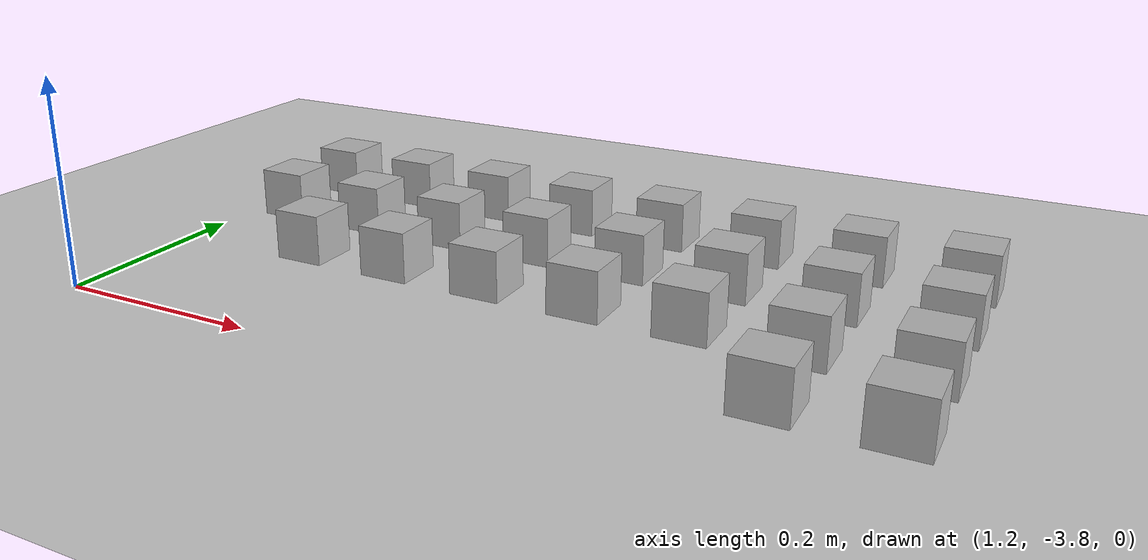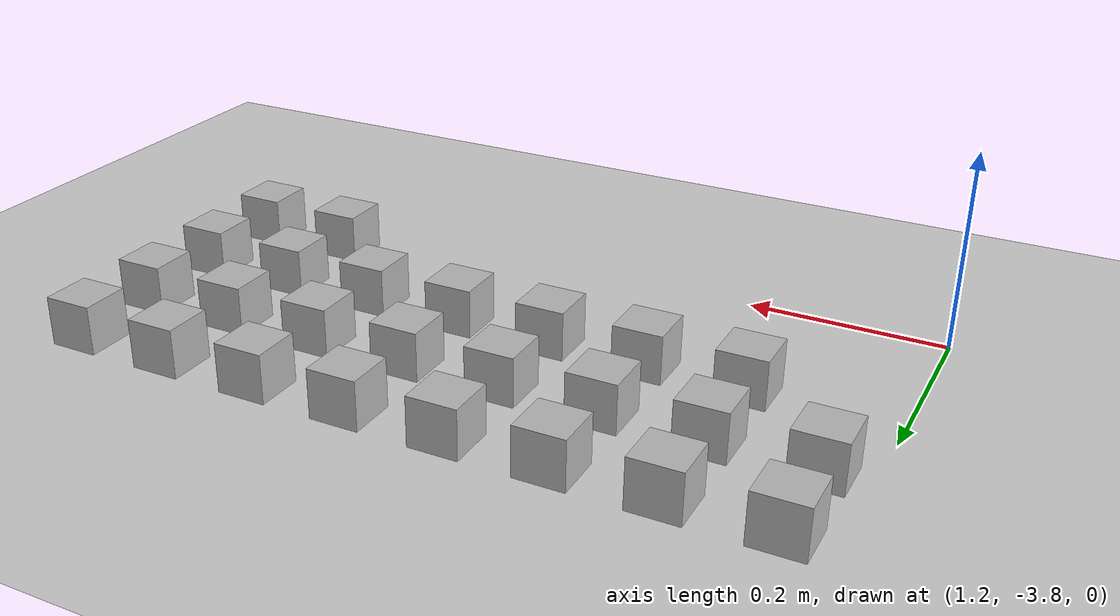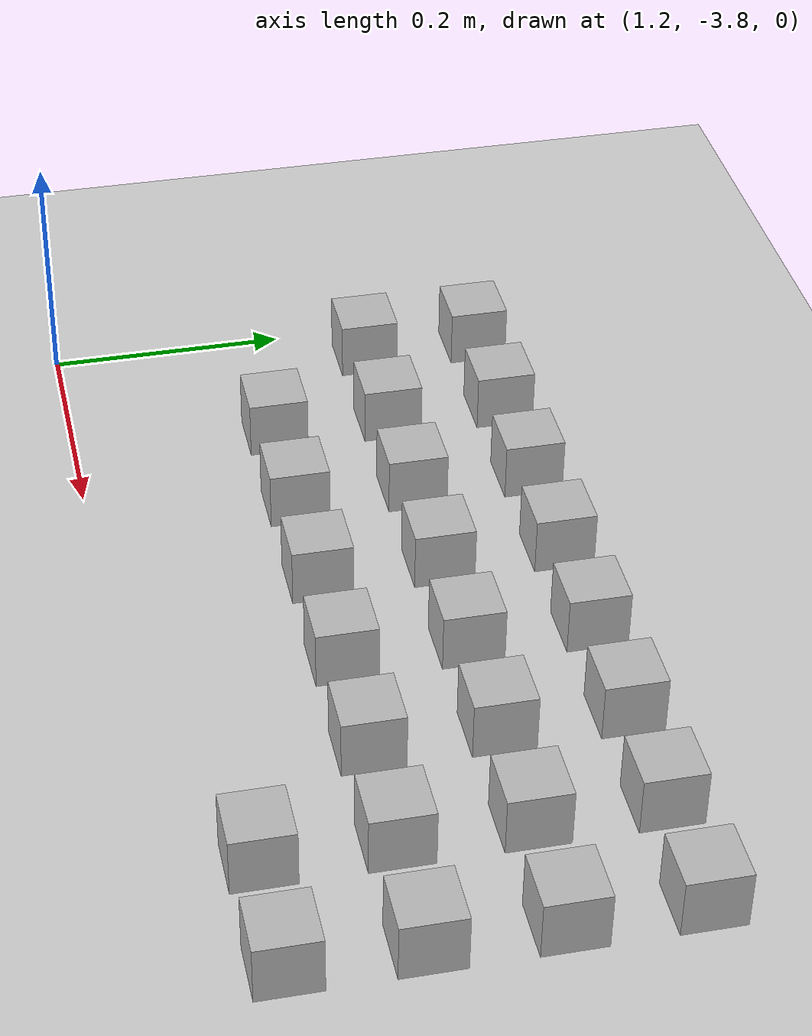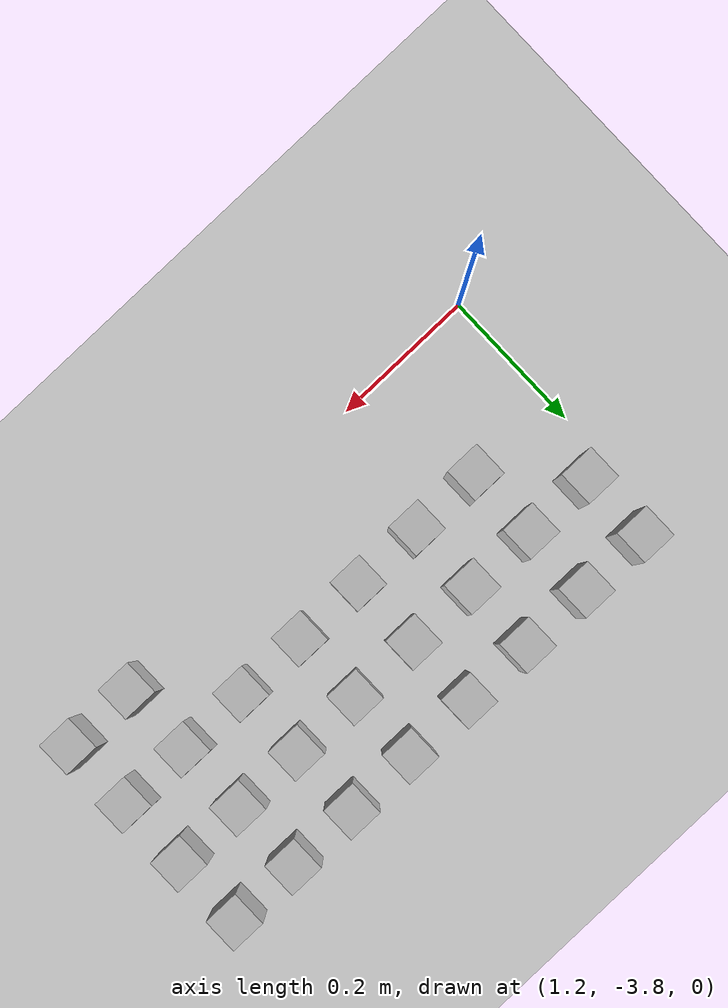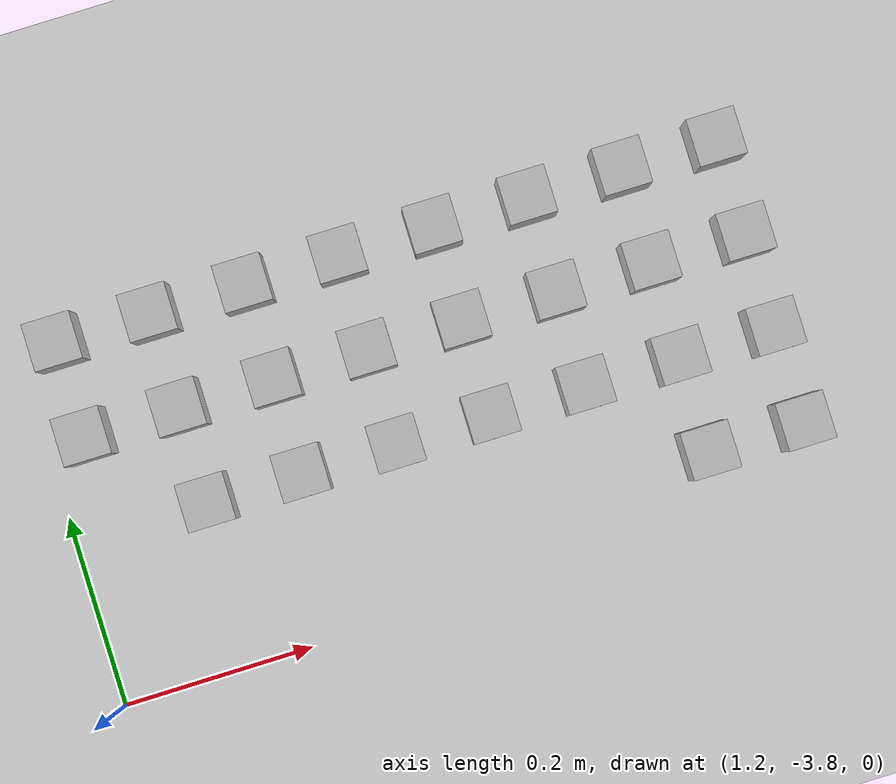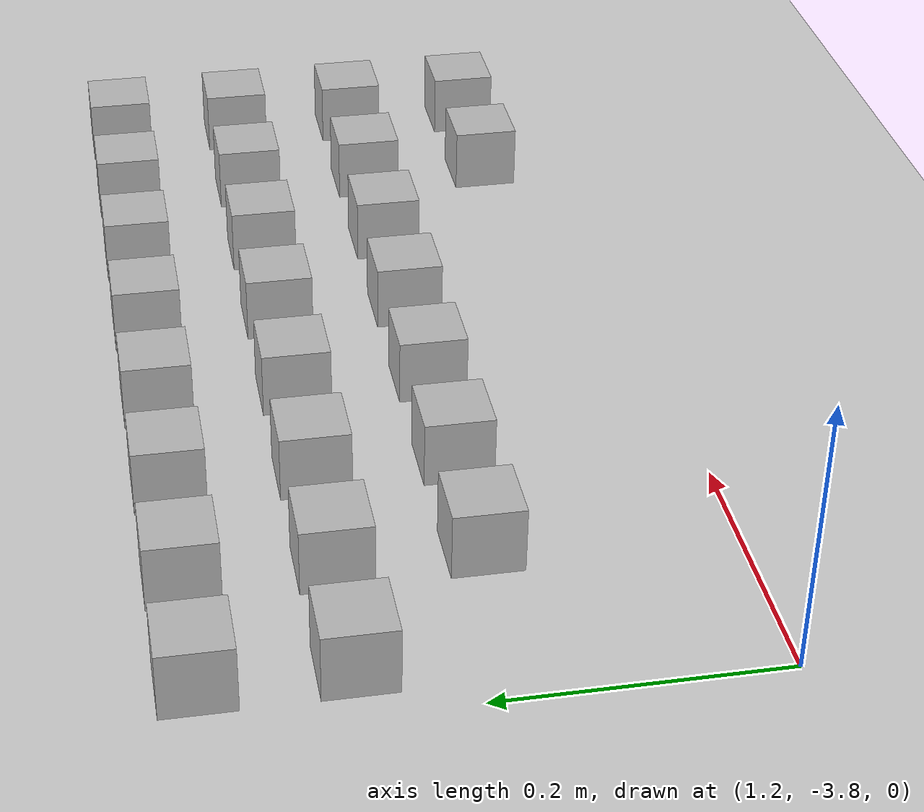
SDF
<sdf version="1.4">
 <world name="default">
  <model name="ground_plane">
   <static>1</static>
   <link name="link">
    <collision name="collision">
     <geometry><plane><normal>0 0 1</normal><size>100 100</size></plane></geometry>
     <surface><friction><ode><mu>100</mu><mu2>50</mu2></ode></friction></surface>
    </collision>
    <visual name="visual">
     <cast_shadows>0</cast_shadows>
     <geometry><plane><normal>0 0 1</normal><size>100 100</size></plane></geometry>
     <material>
      <script><uri>file://media/materials/scripts/gazebo.material</uri><name>Gazebo/Grey</name></script>
     </material>
    </visual>
    <velocity_decay><linear>0</linear><angular>0</angular></velocity_decay>
   </link>
  </model>
  <model name="at230">
   <static>0</static>
   <link name="link">
    <inertial>
     <mass>0.01</mass>
     <inertia><ixx>4e-05</ixx><ixy>0</ixy><ixz>0</ixz><iyy>4e-05</iyy><iyz>0</iyz><izz>4e-05</izz></inertia>
    </inertial>
    <visual name="visual">
     <transparency>0.1</transparency>
     <geometry><box><size>0.05 0.05 0.05</size></box></geometry>
     <material>
      <script>
       <uri>model://at0/materials/scripts</uri>
       <uri>model://at0/materials/textures</uri>
       <name>at0/Diffuse</name>
      </script>
     </material>
    </visual>
    <collision name="collision">
     <geometry><box><size>0.05 0.05 0.05</size></box></geometry>
     <surface><friction><ode><mu>0.8</mu><mu2>0.7</mu2></ode></friction></surface>
    </collision>
    <velocity_decay><linear>0</linear><angular>0</angular></velocity_decay>
   </link>
   <pose>1.84324 -3.72605 0.024993 -2.9e-05 -2.9e-05 1.03398e-25</pose>
  </model>
  <model name="at231">
   <static>0</static>
   <link name="link">
    <inertial>
     <mass>0.01</mass>
     <inertia><ixx>4e-05</ixx><ixy>0</ixy><ixz>0</ixz><iyy>4e-05</iyy><iyz>0</iyz><izz>4e-05</izz></inertia>
    </inertial>
    <visual name="visual">
     <transparency>0.1</transparency>
     <geometry><box><size>0.05 0.05 0.05</size></box></geometry>
     <material>
      <script>
       <uri>model://at0/materials/scripts</uri>
       <uri>model://at0/materials/textures</uri>
       <name>at0/Diffuse</name>
      </script>
     </material>
    </visual>
    <collision name="collision">
     <geometry><box><size>0.05 0.05 0.05</size></box></geometry>
     <surface><friction><ode><mu>0.8</mu><mu2>0.7</mu2></ode></friction></surface>
    </collision>
    <velocity_decay><linear>0</linear><angular>0</angular></velocity_decay>
   </link>
   <pose>1.94324 -3.72605 0.024993 -2.9e-05 -2.9e-05 1.03398e-25</pose>
  </model>
  <model name="at233">
   <static>0</static>
   <link name="link">
    <inertial>
     <mass>0.01</mass>
     <inertia><ixx>4e-05</ixx><ixy>0</ixy><ixz>0</ixz><iyy>4e-05</iyy><iyz>0</iyz><izz>4e-05</izz></inertia>
    </inertial>
    <visual name="visual">
     <transparency>0.1</transparency>
     <geometry><box><size>0.05 0.05 0.05</size></box></geometry>
     <material>
      <script>
       <uri>model://at0/materials/scripts</uri>
       <uri>model://at0/materials/textures</uri>
       <name>at0/Diffuse</name>
      </script>
     </material>
    </visual>
    <collision name="collision">
     <geometry><box><size>0.05 0.05 0.05</size></box></geometry>
     <surface><friction><ode><mu>0.8</mu><mu2>0.7</mu2></ode></friction></surface>
    </collision>
    <velocity_decay><linear>0</linear><angular>0</angular></velocity_decay>
   </link>
   <pose>1.34324 -3.62605 0.024993 -2.9e-05 -2.9e-05 1.03398e-25</pose>
  </model>
  <model name="at234">
   <static>0</static>
   <link name="link">
    <inertial>
     <mass>0.01</mass>
     <inertia><ixx>4e-05</ixx><ixy>0</ixy><ixz>0</ixz><iyy>4e-05</iyy><iyz>0</iyz><izz>4e-05</izz></inertia>
    </inertial>
    <visual name="visual">
     <transparency>0.1</transparency>
     <geometry><box><size>0.05 0.05 0.05</size></box></geometry>
     <material>
      <script>
       <uri>model://at0/materials/scripts</uri>
       <uri>model://at0/materials/textures</uri>
       <name>at0/Diffuse</name>
      </script>
     </material>
    </visual>
    <collision name="collision">
     <geometry><box><size>0.05 0.05 0.05</size></box></geometry>
     <surface><friction><ode><mu>0.8</mu><mu2>0.7</mu2></ode></friction></surface>
    </collision>
    <velocity_decay><linear>0</linear><angular>0</angular></velocity_decay>
   </link>
   <pose>1.44324 -3.62605 0.024997 2.9e-05 2.9e-05 1.03398e-25</pose>
  </model>
  <model name="at235">
   <static>0</static>
   <link name="link">
    <inertial>
     <mass>0.01</mass>
     <inertia><ixx>4e-05</ixx><ixy>0</ixy><ixz>0</ixz><iyy>4e-05</iyy><iyz>0</iyz><izz>4e-05</izz></inertia>
    </inertial>
    <visual name="visual">
     <transparency>0.1</transparency>
     <geometry><box><size>0.05 0.05 0.05</size></box></geometry>
     <material>
      <script>
       <uri>model://at0/materials/scripts</uri>
       <uri>model://at0/materials/textures</uri>
       <name>at0/Diffuse</name>
      </script>
     </material>
    </visual>
    <collision name="collision">
     <geometry><box><size>0.05 0.05 0.05</size></box></geometry>
     <surface><friction><ode><mu>0.8</mu><mu2>0.7</mu2></ode></friction></surface>
    </collision>
    <velocity_decay><linear>0</linear><angular>0</angular></velocity_decay>
   </link>
   <pose>1.54324 -3.62605 0.024997 2.9e-05 2.9e-05 1.03398e-25</pose>
  </model>
  <model name="at236">
   <static>0</static>
   <link name="link">
    <inertial>
     <mass>0.01</mass>
     <inertia><ixx>4e-05</ixx><ixy>0</ixy><ixz>0</ixz><iyy>4e-05</iyy><iyz>0</iyz><izz>4e-05</izz></inertia>
    </inertial>
    <visual name="visual">
     <transparency>0.1</transparency>
     <geometry><box><size>0.05 0.05 0.05</size></box></geometry>
     <material>
      <script>
       <uri>model://at0/materials/scripts</uri>
       <uri>model://at0/materials/textures</uri>
       <name>at0/Diffuse</name>
      </script>
     </material>
    </visual>
    <collision name="collision">
     <geometry><box><size>0.05 0.05 0.05</size></box></geometry>
     <surface><friction><ode><mu>0.8</mu><mu2>0.7</mu2></ode></friction></surface>
    </collision>
    <velocity_decay><linear>0</linear><angular>0</angular></velocity_decay>
   </link>
   <pose>1.64324 -3.62605 0.024997 2.9e-05 2.9e-05 1.03398e-25</pose>
  </model>
  <model name="at237">
   <static>0</static>
   <link name="link">
    <inertial>
     <mass>0.01</mass>
     <inertia><ixx>4e-05</ixx><ixy>0</ixy><ixz>0</ixz><iyy>4e-05</iyy><iyz>0</iyz><izz>4e-05</izz></inertia>
    </inertial>
    <visual name="visual">
     <transparency>0.1</transparency>
     <geometry><box><size>0.05 0.05 0.05</size></box></geometry>
     <material>
      <script>
       <uri>model://at0/materials/scripts</uri>
       <uri>model://at0/materials/textures</uri>
       <name>at0/Diffuse</name>
      </script>
     </material>
    </visual>
    <collision name="collision">
     <geometry><box><size>0.05 0.05 0.05</size></box></geometry>
     <surface><friction><ode><mu>0.8</mu><mu2>0.7</mu2></ode></friction></surface>
    </collision>
    <velocity_decay><linear>0</linear><angular>0</angular></velocity_decay>
   </link>
   <pose>1.74324 -3.62605 0.024997 2.9e-05 2.9e-05 1.03398e-25</pose>
  </model>
  <model name="at238">
   <static>0</static>
   <link name="link">
    <inertial>
     <mass>0.01</mass>
     <inertia><ixx>4e-05</ixx><ixy>0</ixy><ixz>0</ixz><iyy>4e-05</iyy><iyz>0</iyz><izz>4e-05</izz></inertia>
    </inertial>
    <visual name="visual">
     <transparency>0.1</transparency>
     <geometry><box><size>0.05 0.05 0.05</size></box></geometry>
     <material>
      <script>
       <uri>model://at0/materials/scripts</uri>
       <uri>model://at0/materials/textures</uri>
       <name>at0/Diffuse</name>
      </script>
     </material>
    </visual>
    <collision name="collision">
     <geometry><box><size>0.05 0.05 0.05</size></box></geometry>
     <surface><friction><ode><mu>0.8</mu><mu2>0.7</mu2></ode></friction></surface>
    </collision>
    <velocity_decay><linear>0</linear><angular>0</angular></velocity_decay>
   </link>
   <pose>1.84324 -3.62605 0.024997 2.9e-05 2.9e-05 1.03398e-25</pose>
  </model>
  <model name="at239">
   <static>0</static>
   <link name="link">
    <inertial>
     <mass>0.01</mass>
     <inertia><ixx>4e-05</ixx><ixy>0</ixy><ixz>0</ixz><iyy>4e-05</iyy><iyz>0</iyz><izz>4e-05</izz></inertia>
    </inertial>
    <visual name="visual">
     <transparency>0.1</transparency>
     <geometry><box><size>0.05 0.05 0.05</size></box></geometry>
     <material>
      <script>
       <uri>model://at0/materials/scripts</uri>
       <uri>model://at0/materials/textures</uri>
       <name>at0/Diffuse</name>
      </script>
     </material>
    </visual>
    <collision name="collision">
     <geometry><box><size>0.05 0.05 0.05</size></box></geometry>
     <surface><friction><ode><mu>0.8</mu><mu2>0.7</mu2></ode></friction></surface>
    </collision>
    <velocity_decay><linear>0</linear><angular>0</angular></velocity_decay>
   </link>
   <pose>1.94324 -3.62605 0.024997 2.9e-05 2.9e-05 1.03398e-25</pose>
  </model>
  <model name="at240">
   <static>0</static>
   <link name="link">
    <inertial>
     <mass>0.01</mass>
     <inertia><ixx>4e-05</ixx><ixy>0</ixy><ixz>0</ixz><iyy>4e-05</iyy><iyz>0</iyz><izz>4e-05</izz></inertia>
    </inertial>
    <visual name="visual">
     <transparency>0.1</transparency>
     <geometry><box><size>0.05 0.05 0.05</size></box></geometry>
     <material>
      <script>
       <uri>model://at0/materials/scripts</uri>
       <uri>model://at0/materials/textures</uri>
       <name>at0/Diffuse</name>
      </script>
     </material>
    </visual>
    <collision name="collision">
     <geometry><box><size>0.05 0.05 0.05</size></box></geometry>
     <surface><friction><ode><mu>0.8</mu><mu2>0.7</mu2></ode></friction></surface>
    </collision>
    <velocity_decay><linear>0</linear><angular>0</angular></velocity_decay>
   </link>
   <pose>1.24324 -3.52605 0.024993 -2.9e-05 -2.9e-05 1.03398e-25</pose>
  </model>
  <model name="at241">
   <static>0</static>
   <link name="link">
    <inertial>
     <mass>0.01</mass>
     <inertia><ixx>4e-05</ixx><ixy>0</ixy><ixz>0</ixz><iyy>4e-05</iyy><iyz>0</iyz><izz>4e-05</izz></inertia>
    </inertial>
    <visual name="visual">
     <transparency>0.1</transparency>
     <geometry><box><size>0.05 0.05 0.05</size></box></geometry>
     <material>
      <script>
       <uri>model://at0/materials/scripts</uri>
       <uri>model://at0/materials/textures</uri>
       <name>at0/Diffuse</name>
      </script>
     </material>
    </visual>
    <collision name="collision">
     <geometry><box><size>0.05 0.05 0.05</size></box></geometry>
     <surface><friction><ode><mu>0.8</mu><mu2>0.7</mu2></ode></friction></surface>
    </collision>
    <velocity_decay><linear>0</linear><angular>0</angular></velocity_decay>
   </link>
   <pose>1.34324 -3.52605 0.024993 -2.9e-05 -2.9e-05 1.03398e-25</pose>
  </model>
  <model name="at242">
   <static>0</static>
   <link name="link">
    <inertial>
     <mass>0.01</mass>
     <inertia><ixx>4e-05</ixx><ixy>0</ixy><ixz>0</ixz><iyy>4e-05</iyy><iyz>0</iyz><izz>4e-05</izz></inertia>
    </inertial>
    <visual name="visual">
     <transparency>0.1</transparency>
     <geometry><box><size>0.05 0.05 0.05</size></box></geometry>
     <material>
      <script>
       <uri>model://at0/materials/scripts</uri>
       <uri>model://at0/materials/textures</uri>
       <name>at0/Diffuse</name>
      </script>
     </material>
    </visual>
    <collision name="collision">
     <geometry><box><size>0.05 0.05 0.05</size></box></geometry>
     <surface><friction><ode><mu>0.8</mu><mu2>0.7</mu2></ode></friction></surface>
    </collision>
    <velocity_decay><linear>0</linear><angular>0</angular></velocity_decay>
   </link>
   <pose>1.44324 -3.52605 0.024993 -2.9e-05 -2.9e-05 1.03398e-25</pose>
  </model>
  <model name="at243">
   <static>0</static>
   <link name="link">
    <inertial>
     <mass>0.01</mass>
     <inertia><ixx>4e-05</ixx><ixy>0</ixy><ixz>0</ixz><iyy>4e-05</iyy><iyz>0</iyz><izz>4e-05</izz></inertia>
    </inertial>
    <visual name="visual">
     <transparency>0.1</transparency>
     <geometry><box><size>0.05 0.05 0.05</size></box></geometry>
     <material>
      <script>
       <uri>model://at0/materials/scripts</uri>
       <uri>model://at0/materials/textures</uri>
       <name>at0/Diffuse</name>
      </script>
     </material>
    </visual>
    <collision name="collision">
     <geometry><box><size>0.05 0.05 0.05</size></box></geometry>
     <surface><friction><ode><mu>0.8</mu><mu2>0.7</mu2></ode></friction></surface>
    </collision>
    <velocity_decay><linear>0</linear><angular>0</angular></velocity_decay>
   </link>
   <pose>1.54324 -3.52605 0.024997 2.9e-05 2.9e-05 1.03398e-25</pose>
  </model>
  <model name="at244">
   <static>0</static>
   <link name="link">
    <inertial>
     <mass>0.01</mass>
     <inertia><ixx>4e-05</ixx><ixy>0</ixy><ixz>0</ixz><iyy>4e-05</iyy><iyz>0</iyz><izz>4e-05</izz></inertia>
    </inertial>
    <visual name="visual">
     <transparency>0.1</transparency>
     <geometry><box><size>0.05 0.05 0.05</size></box></geometry>
     <material>
      <script>
       <uri>model://at0/materials/scripts</uri>
       <uri>model://at0/materials/textures</uri>
       <name>at0/Diffuse</name>
      </script>
     </material>
    </visual>
    <collision name="collision">
     <geometry><box><size>0.05 0.05 0.05</size></box></geometry>
     <surface><friction><ode><mu>0.8</mu><mu2>0.7</mu2></ode></friction></surface>
    </collision>
    <velocity_decay><linear>0</linear><angular>0</angular></velocity_decay>
   </link>
   <pose>1.64324 -3.52605 0.024993 -2.9e-05 -2.9e-05 1.03398e-25</pose>
  </model>
  <model name="at245">
   <static>0</static>
   <link name="link">
    <inertial>
     <mass>0.01</mass>
     <inertia><ixx>4e-05</ixx><ixy>0</ixy><ixz>0</ixz><iyy>4e-05</iyy><iyz>0</iyz><izz>4e-05</izz></inertia>
    </inertial>
    <visual name="visual">
     <transparency>0.1</transparency>
     <geometry><box><size>0.05 0.05 0.05</size></box></geometry>
     <material>
      <script>
       <uri>model://at0/materials/scripts</uri>
       <uri>model://at0/materials/textures</uri>
       <name>at0/Diffuse</name>
      </script>
     </material>
    </visual>
    <collision name="collision">
     <geometry><box><size>0.05 0.05 0.05</size></box></geometry>
     <surface><friction><ode><mu>0.8</mu><mu2>0.7</mu2></ode></friction></surface>
    </collision>
    <velocity_decay><linear>0</linear><angular>0</angular></velocity_decay>
   </link>
   <pose>1.74324 -3.52605 0.024993 -2.9e-05 -2.9e-05 1.03398e-25</pose>
  </model>
  <model name="at246">
   <static>0</static>
   <link name="link">
    <inertial>
     <mass>0.01</mass>
     <inertia><ixx>4e-05</ixx><ixy>0</ixy><ixz>0</ixz><iyy>4e-05</iyy><iyz>0</iyz><izz>4e-05</izz></inertia>
    </inertial>
    <visual name="visual">
     <transparency>0.1</transparency>
     <geometry><box><size>0.05 0.05 0.05</size></box></geometry>
     <material>
      <script>
       <uri>model://at0/materials/scripts</uri>
       <uri>model://at0/materials/textures</uri>
       <name>at0/Diffuse</name>
      </script>
     </material>
    </visual>
    <collision name="collision">
     <geometry><box><size>0.05 0.05 0.05</size></box></geometry>
     <surface><friction><ode><mu>0.8</mu><mu2>0.7</mu2></ode></friction></surface>
    </collision>
    <velocity_decay><linear>0</linear><angular>0</angular></velocity_decay>
   </link>
   <pose>1.84324 -3.52605 0.024997 2.9e-05 2.9e-05 1.03398e-25</pose>
  </model>
  <model name="at247">
   <static>0</static>
   <link name="link">
    <inertial>
     <mass>0.01</mass>
     <inertia><ixx>4e-05</ixx><ixy>0</ixy><ixz>0</ixz><iyy>4e-05</iyy><iyz>0</iyz><izz>4e-05</izz></inertia>
    </inertial>
    <visual name="visual">
     <transparency>0.1</transparency>
     <geometry><box><size>0.05 0.05 0.05</size></box></geometry>
     <material>
      <script>
       <uri>model://at0/materials/scripts</uri>
       <uri>model://at0/materials/textures</uri>
       <name>at0/Diffuse</name>
      </script>
     </material>
    </visual>
    <collision name="collision">
     <geometry><box><size>0.05 0.05 0.05</size></box></geometry>
     <surface><friction><ode><mu>0.8</mu><mu2>0.7</mu2></ode></friction></surface>
    </collision>
    <velocity_decay><linear>0</linear><angular>0</angular></velocity_decay>
   </link>
   <pose>1.94324 -3.52605 0.024993 -2.9e-05 -2.9e-05 1.03398e-25</pose>
  </model>
  <model name="at248">
   <static>0</static>
   <link name="link">
    <inertial>
     <mass>0.01</mass>
     <inertia><ixx>4e-05</ixx><ixy>0</ixy><ixz>0</ixz><iyy>4e-05</iyy><iyz>0</iyz><izz>4e-05</izz></inertia>
    </inertial>
    <visual name="visual">
     <transparency>0.1</transparency>
     <geometry><box><size>0.05 0.05 0.05</size></box></geometry>
     <material>
      <script>
       <uri>model://at0/materials/scripts</uri>
       <uri>model://at0/materials/textures</uri>
       <name>at0/Diffuse</name>
      </script>
     </material>
    </visual>
    <collision name="collision">
     <geometry><box><size>0.05 0.05 0.05</size></box></geometry>
     <surface><friction><ode><mu>0.8</mu><mu2>0.7</mu2></ode></friction></surface>
    </collision>
    <velocity_decay><linear>0</linear><angular>0</angular></velocity_decay>
   </link>
   <pose>1.24324 -3.42605 0.024993 -2.9e-05 -2.9e-05 1.03398e-25</pose>
  </model>
  <model name="at249">
   <static>0</static>
   <link name="link">
    <inertial>
     <mass>0.01</mass>
     <inertia><ixx>4e-05</ixx><ixy>0</ixy><ixz>0</ixz><iyy>4e-05</iyy><iyz>0</iyz><izz>4e-05</izz></inertia>
    </inertial>
    <visual name="visual">
     <transparency>0.1</transparency>
     <geometry><box><size>0.05 0.05 0.05</size></box></geometry>
     <material>
      <script>
       <uri>model://at0/materials/scripts</uri>
       <uri>model://at0/materials/textures</uri>
       <name>at0/Diffuse</name>
      </script>
     </material>
    </visual>
    <collision name="collision">
     <geometry><box><size>0.05 0.05 0.05</size></box></geometry>
     <surface><friction><ode><mu>0.8</mu><mu2>0.7</mu2></ode></friction></surface>
    </collision>
    <velocity_decay><linear>0</linear><angular>0</angular></velocity_decay>
   </link>
   <pose>1.34324 -3.42605 0.024993 -2.9e-05 -2.9e-05 1.03398e-25</pose>
  </model>
  <model name="at250">
   <static>0</static>
   <link name="link">
    <inertial>
     <mass>0.01</mass>
     <inertia><ixx>4e-05</ixx><ixy>0</ixy><ixz>0</ixz><iyy>4e-05</iyy><iyz>0</iyz><izz>4e-05</izz></inertia>
    </inertial>
    <visual name="visual">
     <transparency>0.1</transparency>
     <geometry><box><size>0.05 0.05 0.05</size></box></geometry>
     <material>
      <script>
       <uri>model://at0/materials/scripts</uri>
       <uri>model://at0/materials/textures</uri>
       <name>at0/Diffuse</name>
      </script>
     </material>
    </visual>
    <collision name="collision">
     <geometry><box><size>0.05 0.05 0.05</size></box></geometry>
     <surface><friction><ode><mu>0.8</mu><mu2>0.7</mu2></ode></friction></surface>
    </collision>
    <velocity_decay><linear>0</linear><angular>0</angular></velocity_decay>
   </link>
   <pose>1.44324 -3.42605 0.024997 2.9e-05 2.9e-05 1.03398e-25</pose>
  </model>
  <model name="at251">
   <static>0</static>
   <link name="link">
    <inertial>
     <mass>0.01</mass>
     <inertia><ixx>4e-05</ixx><ixy>0</ixy><ixz>0</ixz><iyy>4e-05</iyy><iyz>0</iyz><izz>4e-05</izz></inertia>
    </inertial>
    <visual name="visual">
     <transparency>0.1</transparency>
     <geometry><box><size>0.05 0.05 0.05</size></box></geometry>
     <material>
      <script>
       <uri>model://at0/materials/scripts</uri>
       <uri>model://at0/materials/textures</uri>
       <name>at0/Diffuse</name>
      </script>
     </material>
    </visual>
    <collision name="collision">
     <geometry><box><size>0.05 0.05 0.05</size></box></geometry>
     <surface><friction><ode><mu>0.8</mu><mu2>0.7</mu2></ode></friction></surface>
    </collision>
    <velocity_decay><linear>0</linear><angular>0</angular></velocity_decay>
   </link>
   <pose>1.54324 -3.42605 0.024993 -2.9e-05 -2.9e-05 1.03398e-25</pose>
  </model>
  <model name="at252">
   <static>0</static>
   <link name="link">
    <inertial>
     <mass>0.01</mass>
     <inertia><ixx>4e-05</ixx><ixy>0</ixy><ixz>0</ixz><iyy>4e-05</iyy><iyz>0</iyz><izz>4e-05</izz></inertia>
    </inertial>
    <visual name="visual">
     <transparency>0.1</transparency>
     <geometry><box><size>0.05 0.05 0.05</size></box></geometry>
     <material>
      <script>
       <uri>model://at0/materials/scripts</uri>
       <uri>model://at0/materials/textures</uri>
       <name>at0/Diffuse</name>
      </script>
     </material>
    </visual>
    <collision name="collision">
     <geometry><box><size>0.05 0.05 0.05</size></box></geometry>
     <surface><friction><ode><mu>0.8</mu><mu2>0.7</mu2></ode></friction></surface>
    </collision>
    <velocity_decay><linear>0</linear><angular>0</angular></velocity_decay>
   </link>
   <pose>1.64324 -3.42605 0.024997 2.9e-05 2.9e-05 1.03398e-25</pose>
  </model>
  <model name="at253">
   <static>0</static>
   <link name="link">
    <inertial>
     <mass>0.01</mass>
     <inertia><ixx>4e-05</ixx><ixy>0</ixy><ixz>0</ixz><iyy>4e-05</iyy><iyz>0</iyz><izz>4e-05</izz></inertia>
    </inertial>
    <visual name="visual">
     <transparency>0.1</transparency>
     <geometry><box><size>0.05 0.05 0.05</size></box></geometry>
     <material>
      <script>
       <uri>model://at0/materials/scripts</uri>
       <uri>model://at0/materials/textures</uri>
       <name>at0/Diffuse</name>
      </script>
     </material>
    </visual>
    <collision name="collision">
     <geometry><box><size>0.05 0.05 0.05</size></box></geometry>
     <surface><friction><ode><mu>0.8</mu><mu2>0.7</mu2></ode></friction></surface>
    </collision>
    <velocity_decay><linear>0</linear><angular>0</angular></velocity_decay>
   </link>
   <pose>1.74324 -3.42605 0.024997 2.9e-05 2.9e-05 1.03398e-25</pose>
  </model>
  <model name="at254">
   <static>0</static>
   <link name="link">
    <inertial>
     <mass>0.01</mass>
     <inertia><ixx>4e-05</ixx><ixy>0</ixy><ixz>0</ixz><iyy>4e-05</iyy><iyz>0</iyz><izz>4e-05</izz></inertia>
    </inertial>
    <visual name="visual">
     <transparency>0.1</transparency>
     <geometry><box><size>0.05 0.05 0.05</size></box></geometry>
     <material>
      <script>
       <uri>model://at0/materials/scripts</uri>
       <uri>model://at0/materials/textures</uri>
       <name>at0/Diffuse</name>
      </script>
     </material>
    </visual>
    <collision name="collision">
     <geometry><box><size>0.05 0.05 0.05</size></box></geometry>
     <surface><friction><ode><mu>0.8</mu><mu2>0.7</mu2></ode></friction></surface>
    </collision>
    <velocity_decay><linear>0</linear><angular>0</angular></velocity_decay>
   </link>
   <pose>1.84324 -3.42605 0.024997 2.9e-05 2.9e-05 1.03398e-25</pose>
  </model>
  <model name="at255">
   <static>0</static>
   <link name="link">
    <inertial>
     <mass>0.01</mass>
     <inertia><ixx>4e-05</ixx><ixy>0</ixy><ixz>0</ixz><iyy>4e-05</iyy><iyz>0</iyz><izz>4e-05</izz></inertia>
    </inertial>
    <visual name="visual">
     <transparency>0.1</transparency>
     <geometry><box><size>0.05 0.05 0.05</size></box></geometry>
     <material>
      <script>
       <uri>model://at0/materials/scripts</uri>
       <uri>model://at0/materials/textures</uri>
       <name>at0/Diffuse</name>
      </script>
     </material>
    </visual>
    <collision name="collision">
     <geometry><box><size>0.05 0.05 0.05</size></box></geometry>
     <surface><friction><ode><mu>0.8</mu><mu2>0.7</mu2></ode></friction></surface>
    </collision>
    <velocity_decay><linear>0</linear><angular>0</angular></velocity_decay>
   </link>
   <pose>1.94324 -3.42605 0.024993 -2.9e-05 -2.9e-05 1.03398e-25</pose>
  </model>
 </world>
</sdf>
